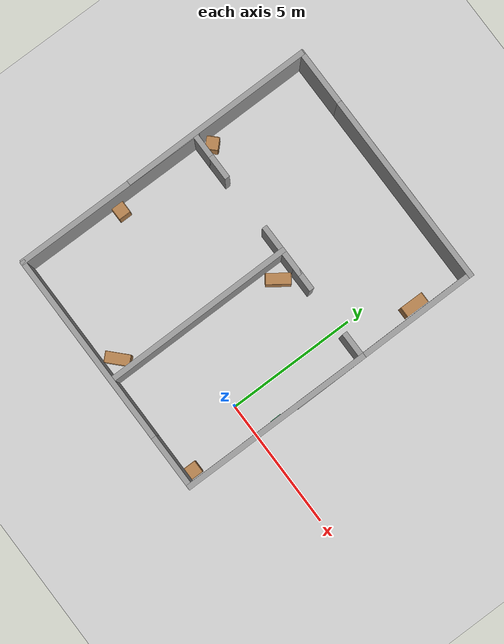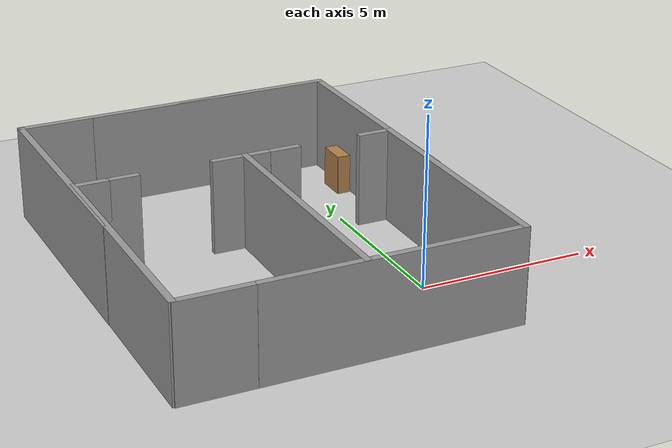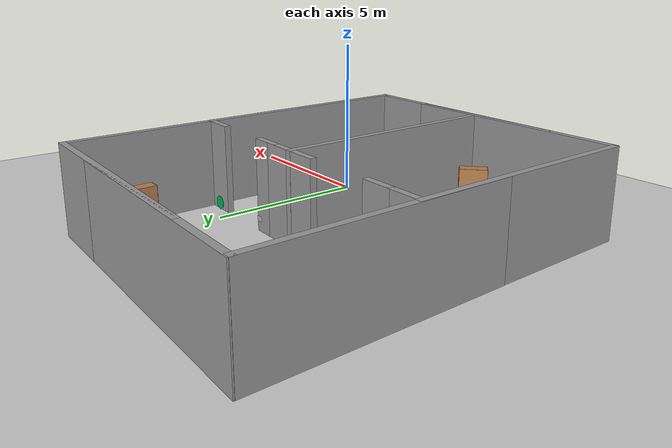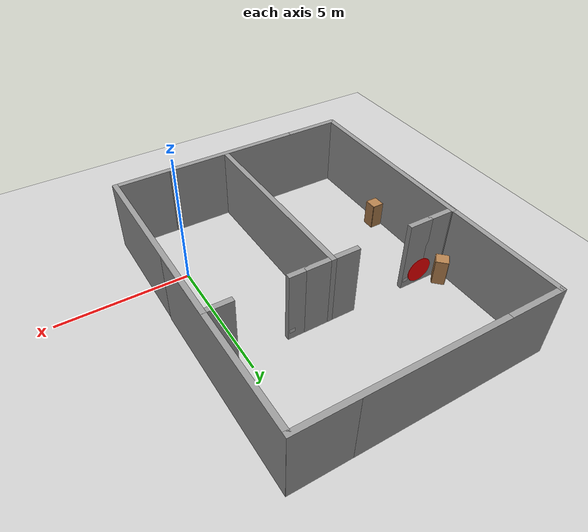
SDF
<sdf version="1.7">
 <world name="default">
  <model name="character">
   <static>1</static>
   <link name="cluedo_character::link">
    <collision name="collision">
     <geometry><plane><normal>0 0 1</normal><size>0.21 0.297</size></plane></geometry>
     <surface><friction><ode><mu>100</mu><mu2>50</mu2></ode></friction></surface>
    </collision>
    <visual name="visual">
     <pose>1.18 0 0.4 1.57 0 -1.57</pose>
     <cast_shadows>0</cast_shadows>
     <geometry><plane><normal>0 0 1</normal><size>0.21 0.297</size></plane></geometry>
     <material>
      <script>
       <uri>model://cluedo_character/materials/scripts</uri>
       <uri>model://cluedo_character/materials/textures</uri>
       <name>Cluedo_character/Image</name>
      </script>
     </material>
    </visual>
    <velocity_decay><linear>0</linear><angular>0</angular></velocity_decay>
   </link>
  </model>
  <light name="sun" type="directional">
   <pose>0 0 10 0 -0 0</pose>
   <diffuse>0.8 0.8 0.8 1</diffuse>
   <specular>0.2 0.2 0.2 1</specular>
   <attenuation>
    <range>1000</range>
    <constant>0.9</constant>
    <linear>0.01</linear>
    <quadratic>0.001</quadratic>
   </attenuation>
   <direction>-0.5 0.1 -0.9</direction>
   <spot><inner_angle>0</inner_angle><outer_angle>0</outer_angle><falloff>0</falloff></spot>
  </light>
  <light name="light_a" type="point">
   <cast_shadows>0</cast_shadows>
   <pose>0 0 1 0 -0 0</pose>
   <diffuse>0.2 0.2 0.2 1</diffuse>
   <specular>1 1 1 1</specular>
   <attenuation>
    <range>1000</range>
    <constant>0.9</constant>
    <linear>0.01</linear>
    <quadratic>0.001</quadratic>
   </attenuation>
   <direction>0 0 -1</direction>
   <spot><inner_angle>0</inner_angle><outer_angle>0</outer_angle><falloff>0</falloff></spot>
  </light>
  <light name="light_b" type="point">
   <cast_shadows>0</cast_shadows>
   <pose>-7 6 1 0 -0 0</pose>
   <diffuse>0.2 0.2 0.2 0.2</diffuse>
   <specular>0.2 0.2 0.2 0.2</specular>
   <attenuation>
    <range>1000</range>
    <constant>0.9</constant>
    <linear>0.01</linear>
    <quadratic>0.001</quadratic>
   </attenuation>
   <direction>0 0 -1</direction>
   <spot><inner_angle>0</inner_angle><outer_angle>0</outer_angle><falloff>0</falloff></spot>
  </light>
  <light name="light_c" type="point">
   <cast_shadows>0</cast_shadows>
   <pose>-2.3 6 1 0 -0 0</pose>
   <diffuse>0.2 0.2 0.2 1</diffuse>
   <specular>1 1 1 1</specular>
   <attenuation>
    <range>1000</range>
    <constant>0.9</constant>
    <linear>0.01</linear>
    <quadratic>0.001</quadratic>
   </attenuation>
   <direction>0 0 -1</direction>
   <spot><inner_angle>0</inner_angle><outer_angle>0</outer_angle><falloff>0</falloff></spot>
  </light>
  <light name="light_d" type="point">
   <cast_shadows>0</cast_shadows>
   <pose>-7 2 1 0 -0 0</pose>
   <diffuse>0.2 0.2 0.2 1</diffuse>
   <specular>1 1 1 1</specular>
   <attenuation>
    <range>1000</range>
    <constant>0.9</constant>
    <linear>0.01</linear>
    <quadratic>0.001</quadratic>
   </attenuation>
   <direction>0 0 -1</direction>
   <spot><inner_angle>0</inner_angle><outer_angle>0</outer_angle><falloff>0</falloff></spot>
  </light>
  <model name="ground_plane">
   <static>1</static>
   <link name="link">
    <collision name="collision">
     <geometry><plane><normal>0 0 1</normal><size>100 100</size></plane></geometry>
     <surface><friction><ode><mu>100</mu><mu2>50</mu2></ode></friction></surface>
    </collision>
    <visual name="visual">
     <cast_shadows>0</cast_shadows>
     <geometry><plane><normal>0 0 1</normal><size>100 100</size></plane></geometry>
     <material>
      <script><uri>file://media/materials/scripts/gazebo.material</uri><name>Gazebo/Grey</name></script>
     </material>
    </visual>
    <velocity_decay><linear>0</linear><angular>0</angular></velocity_decay>
   </link>
  </model>
  <physics type="ode">
   <max_step_size>0.001</max_step_size>
   <real_time_factor>1</real_time_factor>
   <real_time_update_rate>1000</real_time_update_rate>
  </physics>
  <scene><ambient>0.4 0.4 0.4 1</ambient><background>0.7 0.7 0.7 1</background><shadows>1</shadows></scene>
  <spherical_coordinates>
   <surface_model>EARTH_WGS84</surface_model>
   <latitude_deg>0</latitude_deg>
   <longitude_deg>0</longitude_deg>
   <elevation>0</elevation>
   <heading_deg>0</heading_deg>
  </spherical_coordinates>
  <model name="grey_wall_0">
   <static>1</static>
   <link name="link">
    <pose>0 0 1.4 0 -0 0</pose>
    <collision name="collision"><geometry><box><size>7.5 0.2 2.8</size></box></geometry></collision>
    <visual name="visual">
     <cast_shadows>0</cast_shadows>
     <geometry><box><size>7.5 0.2 2.8</size></box></geometry>
     <material>
      <script>
       <uri>model://grey_wall/materials/scripts</uri>
       <uri>model://grey_wall/materials/textures</uri>
       <name>vrc/grey_wall</name>
      </script>
     </material>
    </visual>
    <velocity_decay><linear>0</linear><angular>0</angular></velocity_decay>
   </link>
   <pose>-4.53321 -2.83506 0 0 -0 0</pose>
  </model>
  <model name="grey_wall_1">
   <static>1</static>
   <link name="link">
    <pose>0 0 1.4 0 -0 0</pose>
    <collision name="collision"><geometry><box><size>7.5 0.2 2.8</size></box></geometry></collision>
    <visual name="visual">
     <cast_shadows>0</cast_shadows>
     <geometry><box><size>7.5 0.2 2.8</size></box></geometry>
     <material>
      <script>
       <uri>model://grey_wall/materials/scripts</uri>
       <uri>model://grey_wall/materials/textures</uri>
       <name>vrc/grey_wall</name>
      </script>
     </material>
    </visual>
    <velocity_decay><linear>0</linear><angular>0</angular></velocity_decay>
   </link>
   <pose>-8.23248 0.854179 0 0 0 -1.57181</pose>
  </model>
  <model name="grey_wall_2">
   <static>1</static>
   <link name="link">
    <pose>0 0 1.4 0 -0 0</pose>
    <collision name="collision"><geometry><box><size>7.5 0.2 2.8</size></box></geometry></collision>
    <visual name="visual">
     <cast_shadows>0</cast_shadows>
     <geometry><box><size>7.5 0.2 2.8</size></box></geometry>
     <material>
      <script>
       <uri>model://grey_wall/materials/scripts</uri>
       <uri>model://grey_wall/materials/textures</uri>
       <name>vrc/grey_wall</name>
      </script>
     </material>
    </visual>
    <velocity_decay><linear>0</linear><angular>0</angular></velocity_decay>
   </link>
   <pose>-3.20895 0.824081 0 0 -0 1.57557</pose>
  </model>
  <model name="grey_wall_3">
   <static>1</static>
   <link name="link">
    <pose>0 0 1.4 0 -0 0</pose>
    <collision name="collision"><geometry><box><size>7.5 0.2 2.8</size></box></geometry></collision>
    <visual name="visual">
     <cast_shadows>0</cast_shadows>
     <geometry><box><size>7.5 0.2 2.8</size></box></geometry>
     <material>
      <script>
       <uri>model://grey_wall/materials/scripts</uri>
       <uri>model://grey_wall/materials/textures</uri>
       <name>vrc/grey_wall</name>
      </script>
     </material>
    </visual>
    <velocity_decay><linear>0</linear><angular>0</angular></velocity_decay>
   </link>
   <pose>1.28759 0.815408 0.00212 0 0 -1.57102</pose>
  </model>
  <model name="grey_wall_4">
   <static>1</static>
   <link name="link">
    <pose>0 0 1.4 0 -0 0</pose>
    <collision name="collision"><geometry><box><size>7.5 0.2 2.8</size></box></geometry></collision>
    <visual name="visual">
     <cast_shadows>0</cast_shadows>
     <geometry><box><size>7.5 0.2 2.8</size></box></geometry>
     <material>
      <script>
       <uri>model://grey_wall/materials/scripts</uri>
       <uri>model://grey_wall/materials/textures</uri>
       <name>vrc/grey_wall</name>
      </script>
     </material>
    </visual>
    <velocity_decay><linear>0</linear><angular>0</angular></velocity_decay>
   </link>
   <pose>-2.37715 -2.83764 0 0 -0 0</pose>
  </model>
  <model name="grey_wall_5">
   <static>1</static>
   <link name="link">
    <pose>0 0 1.4 0 -0 0</pose>
    <collision name="collision"><geometry><box><size>7.5 0.2 2.8</size></box></geometry></collision>
    <visual name="visual">
     <cast_shadows>0</cast_shadows>
     <geometry><box><size>7.5 0.2 2.8</size></box></geometry>
     <material>
      <script>
       <uri>model://grey_wall/materials/scripts</uri>
       <uri>model://grey_wall/materials/textures</uri>
       <name>vrc/grey_wall</name>
      </script>
     </material>
    </visual>
    <velocity_decay><linear>0</linear><angular>0</angular></velocity_decay>
   </link>
   <pose>-2.39332 9.09609 0 0 -0 0</pose>
  </model>
  <model name="cabinet">
   <static>1</static>
   <link name="cabinet_bottom_plate">
    <inertial>
     <pose>0 0 -1 0 -0 0</pose>
     <inertia><ixx>2.05</ixx><ixy>0</ixy><ixz>0</ixz><iyy>2.05</iyy><iyz>0</iyz><izz>2.05</izz></inertia>
     <mass>25</mass>
    </inertial>
    <collision name="cabinet_bottom_plate_geom">
     <pose>0 0 0.01 0 -0 0</pose>
     <geometry><box><size>0.45 0.45 0.02</size></box></geometry>
    </collision>
    <visual name="cabinet_bottom_plate_geom_visual">
     <pose>0 0 0.01 0 -0 0</pose>
     <geometry><box><size>0.45 0.45 0.02</size></box></geometry>
     <material>
      <script><uri>file://media/materials/scripts/gazebo.material</uri><name>Gazebo/Wood</name></script>
     </material>
    </visual>
    <collision name="cabinet_bottom_plate_geom_cabinet_back_plate">
     <pose>0.235 0 0.51 0 -0 0</pose>
     <geometry><box><size>0.02 0.45 1.02</size></box></geometry>
    </collision>
    <visual name="cabinet_bottom_plate_geom_cabinet_back_plate_visual">
     <pose>0.235 0 0.51 0 -0 0</pose>
     <geometry><box><size>0.02 0.45 1.02</size></box></geometry>
     <material>
      <script><uri>file://media/materials/scripts/gazebo.material</uri><name>Gazebo/Wood</name></script>
     </material>
    </visual>
    <collision name="cabinet_bottom_plate_geom_cabinet_left_plate">
     <pose>0 0.235 0.51 0 -0 0</pose>
     <geometry><box><size>0.45 0.02 1.02</size></box></geometry>
    </collision>
    <visual name="cabinet_bottom_plate_geom_cabinet_left_plate_visual">
     <pose>0 0.235 0.51 0 -0 0</pose>
     <geometry><box><size>0.45 0.02 1.02</size></box></geometry>
     <material>
      <script><uri>file://media/materials/scripts/gazebo.material</uri><name>Gazebo/Wood</name></script>
     </material>
    </visual>
    <collision name="cabinet_bottom_plate_geom_cabinet_middle_plate">
     <pose>0 0 0.51 0 -0 0</pose>
     <geometry><box><size>0.45 0.45 0.02</size></box></geometry>
    </collision>
    <visual name="cabinet_bottom_plate_geom_cabinet_middle_plate_visual">
     <pose>0 0 0.51 0 -0 0</pose>
     <geometry><box><size>0.45 0.45 0.02</size></box></geometry>
     <material>
      <script><uri>file://media/materials/scripts/gazebo.material</uri><name>Gazebo/Wood</name></script>
     </material>
    </visual>
    <collision name="cabinet_bottom_plate_geom_cabinet_right_plate">
     <pose>0 -0.235 0.51 0 -0 0</pose>
     <geometry><box><size>0.45 0.02 1.02</size></box></geometry>
    </collision>
    <visual name="cabinet_bottom_plate_geom_cabinet_right_plate_visual">
     <pose>0 -0.235 0.51 0 -0 0</pose>
     <geometry><box><size>0.45 0.02 1.02</size></box></geometry>
     <material>
      <script><uri>file://media/materials/scripts/gazebo.material</uri><name>Gazebo/Wood</name></script>
     </material>
    </visual>
    <collision name="cabinet_bottom_plate_geom_cabinet_top_plate">
     <pose>0 0 1.01 0 -0 0</pose>
     <geometry><box><size>0.45 0.45 0.02</size></box></geometry>
    </collision>
    <visual name="cabinet_bottom_plate_geom_cabinet_top_plate_visual">
     <pose>0 0 1.01 0 -0 0</pose>
     <geometry><box><size>0.45 0.45 0.02</size></box></geometry>
     <material>
      <script><uri>file://media/materials/scripts/gazebo.material</uri><name>Gazebo/Wood</name></script>
     </material>
    </visual>
    <velocity_decay><linear>0</linear><angular>0</angular></velocity_decay>
   </link>
   <pose>0.912804 -2.47692 0.028898 0 -0 1.56926</pose>
  </model>
  <model name="bookshelf">
   <static>1</static>
   <link name="link">
    <inertial><mass>1</mass></inertial>
    <collision name="back">
     <pose>0 0.005 0.6 0 -0 0</pose>
     <geometry><box><size>0.9 0.01 1.2</size></box></geometry>
    </collision>
    <visual name="visual1">
     <pose>0 0.005 0.6 0 -0 0</pose>
     <geometry><box><size>0.9 0.01 1.2</size></box></geometry>
     <material>
      <script><uri>file://media/materials/scripts/gazebo.material</uri><name>Gazebo/Wood</name></script>
     </material>
    </visual>
    <collision name="left_side">
     <pose>0.45 -0.195 0.6 0 -0 0</pose>
     <geometry><box><size>0.02 0.4 1.2</size></box></geometry>
    </collision>
    <visual name="visual2">
     <pose>0.45 -0.195 0.6 0 -0 0</pose>
     <geometry><box><size>0.02 0.4 1.2</size></box></geometry>
     <material>
      <script><uri>file://media/materials/scripts/gazebo.material</uri><name>Gazebo/Wood</name></script>
     </material>
    </visual>
    <collision name="right_side">
     <pose>-0.45 -0.195 0.6 0 -0 0</pose>
     <geometry><box><size>0.02 0.4 1.2</size></box></geometry>
    </collision>
    <visual name="visual3">
     <pose>-0.45 -0.195 0.6 0 -0 0</pose>
     <geometry><box><size>0.02 0.4 1.2</size></box></geometry>
     <material>
      <script><uri>file://media/materials/scripts/gazebo.material</uri><name>Gazebo/Wood</name></script>
     </material>
    </visual>
    <collision name="bottom">
     <pose>0 -0.195 0.03 0 -0 0</pose>
     <geometry><box><size>0.88 0.4 0.06</size></box></geometry>
    </collision>
    <visual name="visual4">
     <pose>0 -0.195 0.03 0 -0 0</pose>
     <geometry><box><size>0.88 0.4 0.06</size></box></geometry>
     <material>
      <script><uri>file://media/materials/scripts/gazebo.material</uri><name>Gazebo/Wood</name></script>
     </material>
    </visual>
    <collision name="top">
     <pose>0 -0.195 1.19 0 -0 0</pose>
     <geometry><box><size>0.88 0.4 0.02</size></box></geometry>
    </collision>
    <visual name="visual5">
     <pose>0 -0.195 1.19 0 -0 0</pose>
     <geometry><box><size>0.88 0.4 0.02</size></box></geometry>
     <material>
      <script><uri>file://media/materials/scripts/gazebo.material</uri><name>Gazebo/Wood</name></script>
     </material>
    </visual>
    <collision name="low_shelf">
     <pose>0 -0.195 0.43 0 -0 0</pose>
     <geometry><box><size>0.88 0.4 0.02</size></box></geometry>
    </collision>
    <visual name="visual6">
     <pose>0 -0.195 0.43 0 -0 0</pose>
     <geometry><box><size>0.88 0.4 0.02</size></box></geometry>
     <material>
      <script><uri>file://media/materials/scripts/gazebo.material</uri><name>Gazebo/Wood</name></script>
     </material>
    </visual>
    <collision name="high_shelf">
     <pose>0 -0.195 0.8 0 -0 0</pose>
     <geometry><box><size>0.88 0.4 0.02</size></box></geometry>
    </collision>
    <visual name="visual7">
     <pose>0 -0.195 0.8 0 -0 0</pose>
     <geometry><box><size>0.88 0.4 0.02</size></box></geometry>
     <material>
      <script><uri>file://media/materials/scripts/gazebo.material</uri><name>Gazebo/Wood</name></script>
     </material>
    </visual>
    <velocity_decay><linear>0</linear><angular>0</angular></velocity_decay>
   </link>
   <pose>-2.47728 3.76602 0 0 0 -2.18701</pose>
  </model>
  <model name="grey_wall">
   <static>1</static>
   <link name="link">
    <pose>0 0 1.4 0 -0 0</pose>
    <collision name="collision"><geometry><box><size>7.5 0.2 2.8</size></box></geometry></collision>
    <visual name="visual">
     <cast_shadows>0</cast_shadows>
     <geometry><box><size>7.5 0.2 2.8</size></box></geometry>
     <material>
      <script>
       <uri>model://grey_wall/materials/scripts</uri>
       <uri>model://grey_wall/materials/textures</uri>
       <name>vrc/grey_wall</name>
      </script>
     </material>
    </visual>
    <velocity_decay><linear>0</linear><angular>0</angular></velocity_decay>
   </link>
   <pose>1.28254 5.43803 0 0 0 -1.56399</pose>
  </model>
  <model name="grey_wall_8">
   <static>1</static>
   <link name="link">
    <pose>0 0 1.4 0 -0 0</pose>
    <collision name="collision"><geometry><box><size>7.5 0.2 2.8</size></box></geometry></collision>
    <visual name="visual">
     <cast_shadows>0</cast_shadows>
     <geometry><box><size>7.5 0.2 2.8</size></box></geometry>
     <material>
      <script>
       <uri>model://grey_wall/materials/scripts</uri>
       <uri>model://grey_wall/materials/textures</uri>
       <name>vrc/grey_wall</name>
      </script>
     </material>
    </visual>
    <velocity_decay><linear>0</linear><angular>0</angular></velocity_decay>
   </link>
   <pose>-8.25909 5.41188 0 0 -0 1.5757</pose>
  </model>
  <model name="grey_wall_9">
   <static>1</static>
   <link name="link">
    <pose>0 0 1.4 0 -0 0</pose>
    <collision name="collision"><geometry><box><size>7.5 0.2 2.8</size></box></geometry></collision>
    <visual name="visual">
     <cast_shadows>0</cast_shadows>
     <geometry><box><size>7.5 0.2 2.8</size></box></geometry>
     <material>
      <script>
       <uri>model://grey_wall/materials/scripts</uri>
       <uri>model://grey_wall/materials/textures</uri>
       <name>vrc/grey_wall</name>
      </script>
     </material>
    </visual>
    <velocity_decay><linear>0</linear><angular>0</angular></velocity_decay>
   </link>
   <pose>-4.6171 9.09785 0 0 -0 0</pose>
  </model>
  <model name="cabinet_0">
   <static>1</static>
   <link name="cabinet_bottom_plate">
    <inertial>
     <pose>0 0 -1 0 -0 0</pose>
     <inertia><ixx>2.05</ixx><ixy>0</ixy><ixz>0</ixz><iyy>2.05</iyy><iyz>0</iyz><izz>2.05</izz></inertia>
     <mass>25</mass>
    </inertial>
    <collision name="cabinet_bottom_plate_geom">
     <pose>0 0 0.01 0 -0 0</pose>
     <geometry><box><size>0.45 0.45 0.02</size></box></geometry>
    </collision>
    <visual name="cabinet_bottom_plate_geom_visual">
     <pose>0 0 0.01 0 -0 0</pose>
     <geometry><box><size>0.45 0.45 0.02</size></box></geometry>
     <material>
      <script><uri>file://media/materials/scripts/gazebo.material</uri><name>Gazebo/Wood</name></script>
     </material>
    </visual>
    <collision name="cabinet_bottom_plate_geom_cabinet_back_plate">
     <pose>0.235 0 0.51 0 -0 0</pose>
     <geometry><box><size>0.02 0.45 1.02</size></box></geometry>
    </collision>
    <visual name="cabinet_bottom_plate_geom_cabinet_back_plate_visual">
     <pose>0.235 0 0.51 0 -0 0</pose>
     <geometry><box><size>0.02 0.45 1.02</size></box></geometry>
     <material>
      <script><uri>file://media/materials/scripts/gazebo.material</uri><name>Gazebo/Wood</name></script>
     </material>
    </visual>
    <collision name="cabinet_bottom_plate_geom_cabinet_left_plate">
     <pose>0 0.235 0.51 0 -0 0</pose>
     <geometry><box><size>0.45 0.02 1.02</size></box></geometry>
    </collision>
    <visual name="cabinet_bottom_plate_geom_cabinet_left_plate_visual">
     <pose>0 0.235 0.51 0 -0 0</pose>
     <geometry><box><size>0.45 0.02 1.02</size></box></geometry>
     <material>
      <script><uri>file://media/materials/scripts/gazebo.material</uri><name>Gazebo/Wood</name></script>
     </material>
    </visual>
    <collision name="cabinet_bottom_plate_geom_cabinet_middle_plate">
     <pose>0 0 0.51 0 -0 0</pose>
     <geometry><box><size>0.45 0.45 0.02</size></box></geometry>
    </collision>
    <visual name="cabinet_bottom_plate_geom_cabinet_middle_plate_visual">
     <pose>0 0 0.51 0 -0 0</pose>
     <geometry><box><size>0.45 0.45 0.02</size></box></geometry>
     <material>
      <script><uri>file://media/materials/scripts/gazebo.material</uri><name>Gazebo/Wood</name></script>
     </material>
    </visual>
    <collision name="cabinet_bottom_plate_geom_cabinet_right_plate">
     <pose>0 -0.235 0.51 0 -0 0</pose>
     <geometry><box><size>0.45 0.02 1.02</size></box></geometry>
    </collision>
    <visual name="cabinet_bottom_plate_geom_cabinet_right_plate_visual">
     <pose>0 -0.235 0.51 0 -0 0</pose>
     <geometry><box><size>0.45 0.02 1.02</size></box></geometry>
     <material>
      <script><uri>file://media/materials/scripts/gazebo.material</uri><name>Gazebo/Wood</name></script>
     </material>
    </visual>
    <collision name="cabinet_bottom_plate_geom_cabinet_top_plate">
     <pose>0 0 1.01 0 -0 0</pose>
     <geometry><box><size>0.45 0.45 0.02</size></box></geometry>
    </collision>
    <visual name="cabinet_bottom_plate_geom_cabinet_top_plate_visual">
     <pose>0 0 1.01 0 -0 0</pose>
     <geometry><box><size>0.45 0.45 0.02</size></box></geometry>
     <material>
      <script><uri>file://media/materials/scripts/gazebo.material</uri><name>Gazebo/Wood</name></script>
     </material>
    </visual>
    <velocity_decay><linear>0</linear><angular>0</angular></velocity_decay>
   </link>
   <pose>-7.86683 0.925523 0 0 -0 0</pose>
  </model>
  <model name="bookshelf_0">
   <static>1</static>
   <link name="link">
    <inertial><mass>1</mass></inertial>
    <collision name="back">
     <pose>0 0.005 0.6 0 -0 0</pose>
     <geometry><box><size>0.9 0.01 1.2</size></box></geometry>
    </collision>
    <visual name="visual1">
     <pose>0 0.005 0.6 0 -0 0</pose>
     <geometry><box><size>0.9 0.01 1.2</size></box></geometry>
     <material>
      <script><uri>file://media/materials/scripts/gazebo.material</uri><name>Gazebo/Wood</name></script>
     </material>
    </visual>
    <collision name="left_side">
     <pose>0.45 -0.195 0.6 0 -0 0</pose>
     <geometry><box><size>0.02 0.4 1.2</size></box></geometry>
    </collision>
    <visual name="visual2">
     <pose>0.45 -0.195 0.6 0 -0 0</pose>
     <geometry><box><size>0.02 0.4 1.2</size></box></geometry>
     <material>
      <script><uri>file://media/materials/scripts/gazebo.material</uri><name>Gazebo/Wood</name></script>
     </material>
    </visual>
    <collision name="right_side">
     <pose>-0.45 -0.195 0.6 0 -0 0</pose>
     <geometry><box><size>0.02 0.4 1.2</size></box></geometry>
    </collision>
    <visual name="visual3">
     <pose>-0.45 -0.195 0.6 0 -0 0</pose>
     <geometry><box><size>0.02 0.4 1.2</size></box></geometry>
     <material>
      <script><uri>file://media/materials/scripts/gazebo.material</uri><name>Gazebo/Wood</name></script>
     </material>
    </visual>
    <collision name="bottom">
     <pose>0 -0.195 0.03 0 -0 0</pose>
     <geometry><box><size>0.88 0.4 0.06</size></box></geometry>
    </collision>
    <visual name="visual4">
     <pose>0 -0.195 0.03 0 -0 0</pose>
     <geometry><box><size>0.88 0.4 0.06</size></box></geometry>
     <material>
      <script><uri>file://media/materials/scripts/gazebo.material</uri><name>Gazebo/Wood</name></script>
     </material>
    </visual>
    <collision name="top">
     <pose>0 -0.195 1.19 0 -0 0</pose>
     <geometry><box><size>0.88 0.4 0.02</size></box></geometry>
    </collision>
    <visual name="visual5">
     <pose>0 -0.195 1.19 0 -0 0</pose>
     <geometry><box><size>0.88 0.4 0.02</size></box></geometry>
     <material>
      <script><uri>file://media/materials/scripts/gazebo.material</uri><name>Gazebo/Wood</name></script>
     </material>
    </visual>
    <collision name="low_shelf">
     <pose>0 -0.195 0.43 0 -0 0</pose>
     <geometry><box><size>0.88 0.4 0.02</size></box></geometry>
    </collision>
    <visual name="visual6">
     <pose>0 -0.195 0.43 0 -0 0</pose>
     <geometry><box><size>0.88 0.4 0.02</size></box></geometry>
     <material>
      <script><uri>file://media/materials/scripts/gazebo.material</uri><name>Gazebo/Wood</name></script>
     </material>
    </visual>
    <collision name="high_shelf">
     <pose>0 -0.195 0.8 0 -0 0</pose>
     <geometry><box><size>0.88 0.4 0.02</size></box></geometry>
    </collision>
    <visual name="visual7">
     <pose>0 -0.195 0.8 0 -0 0</pose>
     <geometry><box><size>0.88 0.4 0.02</size></box></geometry>
     <material>
      <script><uri>file://media/materials/scripts/gazebo.material</uri><name>Gazebo/Wood</name></script>
     </material>
    </visual>
    <velocity_decay><linear>0</linear><angular>0</angular></velocity_decay>
   </link>
   <pose>-3.90366 -2.11997 0 0 -0 0.763607</pose>
  </model>
  <model name="grey_wall_small">
   <static>1</static>
   <link name="link">
    <pose>0 0 1.4 0 -0 0</pose>
    <collision name="collision"><geometry><box><size>0.9375 0.2 2.8</size></box></geometry></collision>
    <visual name="visual">
     <cast_shadows>0</cast_shadows>
     <geometry><box><size>0.9375 0.2 2.8</size></box></geometry>
     <material>
      <script>
       <uri>model://grey_wall_small/materials/scripts</uri>
       <uri>model://grey_wall_small/materials/textures</uri>
       <name>vrc/grey_wall_small</name>
      </script>
     </material>
    </visual>
    <velocity_decay><linear>0</linear><angular>0</angular></velocity_decay>
   </link>
   <pose>-2.66651 4.47404 0 0 -0 0</pose>
  </model>
  <model name="grey_wall_small_0">
   <static>1</static>
   <link name="link">
    <pose>0 0 1.4 0 -0 0</pose>
    <collision name="collision"><geometry><box><size>0.9375 0.2 2.8</size></box></geometry></collision>
    <visual name="visual">
     <cast_shadows>0</cast_shadows>
     <geometry><box><size>0.9375 0.2 2.8</size></box></geometry>
     <material>
      <script>
       <uri>model://grey_wall_small/materials/scripts</uri>
       <uri>model://grey_wall_small/materials/textures</uri>
       <name>vrc/grey_wall_small</name>
      </script>
     </material>
    </visual>
    <velocity_decay><linear>0</linear><angular>0</angular></velocity_decay>
   </link>
   <pose>-3.79075 4.47218 0 0 -0 0</pose>
  </model>
  <model name="grey_wall_small_1">
   <static>1</static>
   <link name="link">
    <pose>0 0 1.4 0 -0 0</pose>
    <collision name="collision"><geometry><box><size>0.9375 0.2 2.8</size></box></geometry></collision>
    <visual name="visual">
     <cast_shadows>0</cast_shadows>
     <geometry><box><size>0.9375 0.2 2.8</size></box></geometry>
     <material>
      <script>
       <uri>model://grey_wall_small/materials/scripts</uri>
       <uri>model://grey_wall_small/materials/textures</uri>
       <name>vrc/grey_wall_small</name>
      </script>
     </material>
    </visual>
    <velocity_decay><linear>0</linear><angular>0</angular></velocity_decay>
   </link>
   <pose>-2.03511 4.47305 0 0 -0 0</pose>
  </model>
  <model name="grey_wall_small_2">
   <static>1</static>
   <link name="link">
    <pose>0 0 1.4 0 -0 0</pose>
    <collision name="collision"><geometry><box><size>0.9375 0.2 2.8</size></box></geometry></collision>
    <visual name="visual">
     <cast_shadows>0</cast_shadows>
     <geometry><box><size>0.9375 0.2 2.8</size></box></geometry>
     <material>
      <script>
       <uri>model://grey_wall_small/materials/scripts</uri>
       <uri>model://grey_wall_small/materials/textures</uri>
       <name>vrc/grey_wall_small</name>
      </script>
     </material>
    </visual>
    <velocity_decay><linear>0</linear><angular>0</angular></velocity_decay>
   </link>
   <pose>0.747906 4.47091 0 0 -0 0</pose>
  </model>
  <model name="grey_wall_small_3">
   <static>1</static>
   <link name="link">
    <pose>0 0 1.4 0 -0 0</pose>
    <collision name="collision"><geometry><box><size>0.9375 0.2 2.8</size></box></geometry></collision>
    <visual name="visual">
     <cast_shadows>0</cast_shadows>
     <geometry><box><size>0.9375 0.2 2.8</size></box></geometry>
     <material>
      <script>
       <uri>model://grey_wall_small/materials/scripts</uri>
       <uri>model://grey_wall_small/materials/textures</uri>
       <name>vrc/grey_wall_small</name>
      </script>
     </material>
    </visual>
    <velocity_decay><linear>0</linear><angular>0</angular></velocity_decay>
   </link>
   <pose>-7.6898 4.46929 0 0 -0 0</pose>
  </model>
  <model name="grey_wall_small_4">
   <static>1</static>
   <link name="link">
    <pose>0 0 1.4 0 -0 0</pose>
    <collision name="collision"><geometry><box><size>0.9375 0.2 2.8</size></box></geometry></collision>
    <visual name="visual">
     <cast_shadows>0</cast_shadows>
     <geometry><box><size>0.9375 0.2 2.8</size></box></geometry>
     <material>
      <script>
       <uri>model://grey_wall_small/materials/scripts</uri>
       <uri>model://grey_wall_small/materials/textures</uri>
       <name>vrc/grey_wall_small</name>
      </script>
     </material>
    </visual>
    <velocity_decay><linear>0</linear><angular>0</angular></velocity_decay>
   </link>
   <pose>-6.82457 4.46929 0 0 -0 0</pose>
  </model>
  <model name="red_image">
   <static>1</static>
   <link name="link">
    <collision name="collision">
     <geometry><plane><normal>0 0 1</normal><size>0.21 0.16</size></plane></geometry>
     <surface><friction><ode><mu>100</mu><mu2>50</mu2></ode></friction></surface>
    </collision>
    <visual name="visual">
     <pose>-6.48 4.6 0.4 1.57 0 3.14</pose>
     <cast_shadows>0</cast_shadows>
     <geometry><plane><normal>0 0 1</normal><size>0.21 0.16</size></plane></geometry>
     <material>
      <script>
       <uri>model://red_image/materials/scripts</uri>
       <uri>model://red_image/materials/textures</uri>
       <name>red_image/Image</name>
      </script>
     </material>
    </visual>
    <velocity_decay><linear>0</linear><angular>0</angular></velocity_decay>
   </link>
  </model>
  <model name="green_image">
   <static>1</static>
   <link name="link">
    <collision name="collision">
     <geometry><plane><normal>0 0 1</normal><size>0.21 0.16</size></plane></geometry>
     <surface><friction><ode><mu>100</mu><mu2>50</mu2></ode></friction></surface>
    </collision>
    <visual name="visual">
     <pose>-1.7 4.6 0.4 1.57 0 3.14</pose>
     <cast_shadows>0</cast_shadows>
     <geometry><plane><normal>0 0 1</normal><size>0.21 0.16</size></plane></geometry>
     <material>
      <script>
       <uri>model://green_image/materials/scripts</uri>
       <uri>model://green_image/materials/textures</uri>
       <name>green_image/Image</name>
      </script>
     </material>
    </visual>
    <velocity_decay><linear>0</linear><angular>0</angular></velocity_decay>
   </link>
  </model>
  <model name="bookshelf_1">
   <static>1</static>
   <link name="link">
    <inertial><mass>1</mass></inertial>
    <collision name="back">
     <pose>0 0.005 0.6 0 -0 0</pose>
     <geometry><box><size>0.9 0.01 1.2</size></box></geometry>
    </collision>
    <visual name="visual1">
     <pose>0 0.005 0.6 0 -0 0</pose>
     <geometry><box><size>0.9 0.01 1.2</size></box></geometry>
     <material>
      <script><uri>file://media/materials/scripts/gazebo.material</uri><name>Gazebo/Wood</name></script>
     </material>
    </visual>
    <collision name="left_side">
     <pose>0.45 -0.195 0.6 0 -0 0</pose>
     <geometry><box><size>0.02 0.4 1.2</size></box></geometry>
    </collision>
    <visual name="visual2">
     <pose>0.45 -0.195 0.6 0 -0 0</pose>
     <geometry><box><size>0.02 0.4 1.2</size></box></geometry>
     <material>
      <script><uri>file://media/materials/scripts/gazebo.material</uri><name>Gazebo/Wood</name></script>
     </material>
    </visual>
    <collision name="right_side">
     <pose>-0.45 -0.195 0.6 0 -0 0</pose>
     <geometry><box><size>0.02 0.4 1.2</size></box></geometry>
    </collision>
    <visual name="visual3">
     <pose>-0.45 -0.195 0.6 0 -0 0</pose>
     <geometry><box><size>0.02 0.4 1.2</size></box></geometry>
     <material>
      <script><uri>file://media/materials/scripts/gazebo.material</uri><name>Gazebo/Wood</name></script>
     </material>
    </visual>
    <collision name="bottom">
     <pose>0 -0.195 0.03 0 -0 0</pose>
     <geometry><box><size>0.88 0.4 0.06</size></box></geometry>
    </collision>
    <visual name="visual4">
     <pose>0 -0.195 0.03 0 -0 0</pose>
     <geometry><box><size>0.88 0.4 0.06</size></box></geometry>
     <material>
      <script><uri>file://media/materials/scripts/gazebo.material</uri><name>Gazebo/Wood</name></script>
     </material>
    </visual>
    <collision name="top">
     <pose>0 -0.195 1.19 0 -0 0</pose>
     <geometry><box><size>0.88 0.4 0.02</size></box></geometry>
    </collision>
    <visual name="visual5">
     <pose>0 -0.195 1.19 0 -0 0</pose>
     <geometry><box><size>0.88 0.4 0.02</size></box></geometry>
     <material>
      <script><uri>file://media/materials/scripts/gazebo.material</uri><name>Gazebo/Wood</name></script>
     </material>
    </visual>
    <collision name="low_shelf">
     <pose>0 -0.195 0.43 0 -0 0</pose>
     <geometry><box><size>0.88 0.4 0.02</size></box></geometry>
    </collision>
    <visual name="visual6">
     <pose>0 -0.195 0.43 0 -0 0</pose>
     <geometry><box><size>0.88 0.4 0.02</size></box></geometry>
     <material>
      <script><uri>file://media/materials/scripts/gazebo.material</uri><name>Gazebo/Wood</name></script>
     </material>
    </visual>
    <collision name="high_shelf">
     <pose>0 -0.195 0.8 0 -0 0</pose>
     <geometry><box><size>0.88 0.4 0.02</size></box></geometry>
    </collision>
    <visual name="visual7">
     <pose>0 -0.195 0.8 0 -0 0</pose>
     <geometry><box><size>0.88 0.4 0.02</size></box></geometry>
     <material>
      <script><uri>file://media/materials/scripts/gazebo.material</uri><name>Gazebo/Wood</name></script>
     </material>
    </visual>
    <velocity_decay><linear>0</linear><angular>0</angular></velocity_decay>
   </link>
   <pose>0.745914 7.12361 0 0 -0 1.56891</pose>
  </model>
  <model name="cabinet_1">
   <static>1</static>
   <link name="cabinet_bottom_plate">
    <inertial>
     <pose>0 0 -1 0 -0 0</pose>
     <inertia><ixx>2.05</ixx><ixy>0</ixy><ixz>0</ixz><iyy>2.05</iyy><iyz>0</iyz><izz>2.05</izz></inertia>
     <mass>25</mass>
    </inertial>
    <collision name="cabinet_bottom_plate_geom">
     <pose>0 0 0.01 0 -0 0</pose>
     <geometry><box><size>0.45 0.45 0.02</size></box></geometry>
    </collision>
    <visual name="cabinet_bottom_plate_geom_visual">
     <pose>0 0 0.01 0 -0 0</pose>
     <geometry><box><size>0.45 0.45 0.02</size></box></geometry>
     <material>
      <script><uri>file://media/materials/scripts/gazebo.material</uri><name>Gazebo/Wood</name></script>
     </material>
    </visual>
    <collision name="cabinet_bottom_plate_geom_cabinet_back_plate">
     <pose>0.235 0 0.51 0 -0 0</pose>
     <geometry><box><size>0.02 0.45 1.02</size></box></geometry>
    </collision>
    <visual name="cabinet_bottom_plate_geom_cabinet_back_plate_visual">
     <pose>0.235 0 0.51 0 -0 0</pose>
     <geometry><box><size>0.02 0.45 1.02</size></box></geometry>
     <material>
      <script><uri>file://media/materials/scripts/gazebo.material</uri><name>Gazebo/Wood</name></script>
     </material>
    </visual>
    <collision name="cabinet_bottom_plate_geom_cabinet_left_plate">
     <pose>0 0.235 0.51 0 -0 0</pose>
     <geometry><box><size>0.45 0.02 1.02</size></box></geometry>
    </collision>
    <visual name="cabinet_bottom_plate_geom_cabinet_left_plate_visual">
     <pose>0 0.235 0.51 0 -0 0</pose>
     <geometry><box><size>0.45 0.02 1.02</size></box></geometry>
     <material>
      <script><uri>file://media/materials/scripts/gazebo.material</uri><name>Gazebo/Wood</name></script>
     </material>
    </visual>
    <collision name="cabinet_bottom_plate_geom_cabinet_middle_plate">
     <pose>0 0 0.51 0 -0 0</pose>
     <geometry><box><size>0.45 0.45 0.02</size></box></geometry>
    </collision>
    <visual name="cabinet_bottom_plate_geom_cabinet_middle_plate_visual">
     <pose>0 0 0.51 0 -0 0</pose>
     <geometry><box><size>0.45 0.45 0.02</size></box></geometry>
     <material>
      <script><uri>file://media/materials/scripts/gazebo.material</uri><name>Gazebo/Wood</name></script>
     </material>
    </visual>
    <collision name="cabinet_bottom_plate_geom_cabinet_right_plate">
     <pose>0 -0.235 0.51 0 -0 0</pose>
     <geometry><box><size>0.45 0.02 1.02</size></box></geometry>
    </collision>
    <visual name="cabinet_bottom_plate_geom_cabinet_right_plate_visual">
     <pose>0 -0.235 0.51 0 -0 0</pose>
     <geometry><box><size>0.45 0.02 1.02</size></box></geometry>
     <material>
      <script><uri>file://media/materials/scripts/gazebo.material</uri><name>Gazebo/Wood</name></script>
     </material>
    </visual>
    <collision name="cabinet_bottom_plate_geom_cabinet_top_plate">
     <pose>0 0 1.01 0 -0 0</pose>
     <geometry><box><size>0.45 0.45 0.02</size></box></geometry>
    </collision>
    <visual name="cabinet_bottom_plate_geom_cabinet_top_plate_visual">
     <pose>0 0 1.01 0 -0 0</pose>
     <geometry><box><size>0.45 0.45 0.02</size></box></geometry>
     <material>
      <script><uri>file://media/materials/scripts/gazebo.material</uri><name>Gazebo/Wood</name></script>
     </material>
    </visual>
    <velocity_decay><linear>0</linear><angular>0</angular></velocity_decay>
   </link>
   <pose>-7.8455 4.90192 0 0 -0 0.78721</pose>
  </model>
  <gravity>0 0 -9.8</gravity>
  <magnetic_field>6e-06 2.3e-05 -4.2e-05</magnetic_field>
  <atmosphere type="adiabatic"/>
  <model name="unit_cylinder_red">
   <link name="link">
    <inertial>
     <mass>1</mass>
     <inertia><ixx>0.145833</ixx><ixy>0</ixy><ixz>0</ixz><iyy>0.145833</iyy><iyz>0</iyz><izz>0.125</izz></inertia>
    </inertial>
    <gravity>0</gravity>
    <visual name="visual">
     <geometry><cylinder><radius>0.5</radius><length>0.0138431</length></cylinder></geometry>
     <material>
      <script><name>Gazebo/Grey</name><uri>file://media/materials/scripts/gazebo.material</uri></script>
      <shader type="pixel"><normal_map>__default__</normal_map></shader>
      <ambient>1 0 0 1</ambient>
      <diffuse>1 0 0 1</diffuse>
      <specular>1 0 0 1</specular>
      <emissive>1 0 0 1</emissive>
     </material>
    </visual>
    <collision name="collision">
     <geometry><cylinder><radius>0.5</radius><length>0.013843</length></cylinder></geometry>
     <surface>
      <friction>
       <ode><mu>1</mu><mu2>1</mu2><fdir1>0 0 0</fdir1><slip1>0</slip1><slip2>0</slip2></ode>
       <torsional>
        <coefficient>1</coefficient>
        <patch_radius>0</patch_radius>
        <surface_radius>0</surface_radius>
        <use_patch_radius>1</use_patch_radius>
        <ode><slip>0</slip></ode>
       </torsional>
      </friction>
      <bounce><restitution_coefficient>0</restitution_coefficient><threshold>1e+06</threshold></bounce>
      <contact>
       <collide_without_contact>0</collide_without_contact>
       <collide_without_contact_bitmask>1</collide_without_contact_bitmask>
       <collide_bitmask>1</collide_bitmask>
       <ode>
        <soft_cfm>0</soft_cfm>
        <soft_erp>0.2</soft_erp>
        <kp>1e+13</kp>
        <kd>1</kd>
        <max_vel>0.01</max_vel>
        <min_depth>0</min_depth>
       </ode>
       <bullet>
        <split_impulse>1</split_impulse>
        <split_impulse_penetration_threshold>-0.01</split_impulse_penetration_threshold>
        <soft_cfm>0</soft_cfm>
        <soft_erp>0.2</soft_erp>
        <kp>1e+13</kp>
        <kd>1</kd>
       </bullet>
      </contact>
     </surface>
    </collision>
   </link>
   <static>0</static>
   <pose>-7.09133 4.58334 0.588454 -1.57619 0 0</pose>
  </model>
  <model name="unit_cylinder_green">
   <link name="link">
    <inertial>
     <mass>1</mass>
     <inertia><ixx>0.145833</ixx><ixy>0</ixy><ixz>0</ixz><iyy>0.145833</iyy><iyz>0</iyz><izz>0.125</izz></inertia>
    </inertial>
    <visual name="visual">
     <geometry><cylinder><radius>0.215394</radius><length>0.0138431</length></cylinder></geometry>
     <material>
      <script><name>Gazebo/Grey</name><uri>file://media/materials/scripts/gazebo.material</uri></script>
      <shader type="pixel"><normal_map>__default__</normal_map></shader>
      <ambient>0 0.686 0.314 1</ambient>
      <diffuse>0 0.686 0.314 1</diffuse>
      <specular>0 0.686 0.314 1</specular>
      <emissive>0 0.686 0.314 1</emissive>
     </material>
    </visual>
    <collision name="collision">
     <geometry><cylinder><radius>0.215394</radius><length>0.013843</length></cylinder></geometry>
     <surface>
      <friction>
       <ode><mu>1</mu><mu2>1</mu2><fdir1>0 0 0</fdir1><slip1>0</slip1><slip2>0</slip2></ode>
       <torsional>
        <coefficient>1</coefficient>
        <patch_radius>0</patch_radius>
        <surface_radius>0</surface_radius>
        <use_patch_radius>1</use_patch_radius>
        <ode><slip>0</slip></ode>
       </torsional>
      </friction>
      <bounce><restitution_coefficient>0</restitution_coefficient><threshold>1e+06</threshold></bounce>
      <contact>
       <collide_without_contact>0</collide_without_contact>
       <collide_without_contact_bitmask>1</collide_without_contact_bitmask>
       <collide_bitmask>1</collide_bitmask>
       <ode>
        <soft_cfm>0</soft_cfm>
        <soft_erp>0.2</soft_erp>
        <kp>1e+13</kp>
        <kd>1</kd>
        <max_vel>0.01</max_vel>
        <min_depth>0</min_depth>
       </ode>
       <bullet>
        <split_impulse>1</split_impulse>
        <split_impulse_penetration_threshold>-0.01</split_impulse_penetration_threshold>
        <soft_cfm>0</soft_cfm>
        <soft_erp>0.2</soft_erp>
        <kp>1e+13</kp>
        <kd>1</kd>
       </bullet>
      </contact>
     </surface>
    </collision>
   </link>
   <static>0</static>
   <pose>0.745096 4.59995 0.215388 -1.57116 0 0</pose>
  </model>
  <model name="unit_cylinder_green_clone">
   <link name="link">
    <inertial>
     <mass>1</mass>
     <inertia><ixx>0.145833</ixx><ixy>0</ixy><ixz>0</ixz><iyy>0.145833</iyy><iyz>0</iyz><izz>0.125</izz></inertia>
    </inertial>
    <visual name="visual">
     <geometry><cylinder><radius>0.215394</radius><length>0.0138431</length></cylinder></geometry>
     <material>
      <script><name>Gazebo/Grey</name><uri>file://media/materials/scripts/gazebo.material</uri></script>
      <shader type="pixel"><normal_map>__default__</normal_map></shader>
      <ambient>0 0.686 0.314 1</ambient>
      <diffuse>0 0.686 0.314 1</diffuse>
      <specular>0 0.686 0.314 1</specular>
      <emissive>0 0.686 0.314 1</emissive>
     </material>
    </visual>
    <collision name="collision">
     <geometry><cylinder><radius>0.215394</radius><length>0.013843</length></cylinder></geometry>
     <surface>
      <friction>
       <ode><mu>1</mu><mu2>1</mu2><fdir1>0 0 0</fdir1><slip1>0</slip1><slip2>0</slip2></ode>
       <torsional>
        <coefficient>1</coefficient>
        <patch_radius>0</patch_radius>
        <surface_radius>0</surface_radius>
        <use_patch_radius>1</use_patch_radius>
        <ode><slip>0</slip></ode>
       </torsional>
      </friction>
      <bounce><restitution_coefficient>0</restitution_coefficient><threshold>1e+06</threshold></bounce>
      <contact>
       <collide_without_contact>0</collide_without_contact>
       <collide_without_contact_bitmask>1</collide_without_contact_bitmask>
       <collide_bitmask>1</collide_bitmask>
       <ode>
        <soft_cfm>0</soft_cfm>
        <soft_erp>0.2</soft_erp>
        <kp>1e+13</kp>
        <kd>1</kd>
        <max_vel>0.01</max_vel>
        <min_depth>0</min_depth>
       </ode>
       <bullet>
        <split_impulse>1</split_impulse>
        <split_impulse_penetration_threshold>-0.01</split_impulse_penetration_threshold>
        <soft_cfm>0</soft_cfm>
        <soft_erp>0.2</soft_erp>
        <kp>1e+13</kp>
        <kd>1</kd>
       </bullet>
      </contact>
     </surface>
    </collision>
   </link>
   <static>0</static>
   <pose>1.17628 0.915815 0.215392 -1.5708 0.002734 1.58472</pose>
  </model>
 </world>
</sdf>
